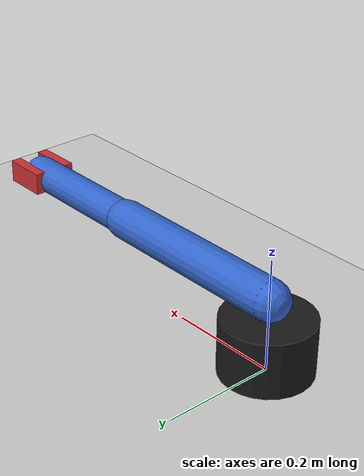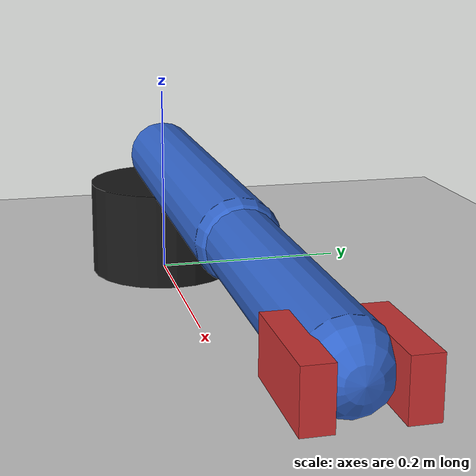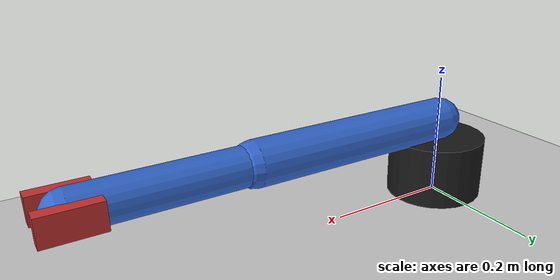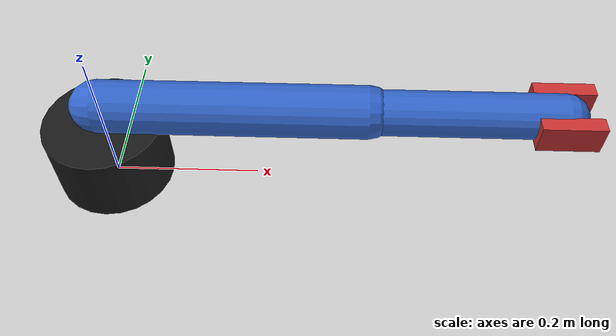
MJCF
<mujoco model="toy_arm">
  <compiler angle="radian" autolimits="true"/>
  <option timestep="0.005" gravity="0 0 -9.81"/>
  <visual>
    <global offwidth="320" offheight="240"/>
  </visual>

  <!-- Exclude self-collisions between adjacent bodies so contact forces
       do not interfere with actuator tracking. -->
  <contact>
    <exclude body1="base"  body2="link1"/>
    <exclude body1="link1" body2="link2"/>
    <exclude body1="link2" body2="gripper_body"/>
  </contact>

  <asset>
    <texture type="skybox" builtin="gradient" rgb1="0.3 0.5 0.7" rgb2="0 0 0" width="512" height="512"/>
    <material name="mat_floor" rgba="0.8 0.8 0.8 1"/>
    <material name="mat_link" rgba="0.2 0.4 0.8 1"/>
  </asset>

  <worldbody>
    <light pos="0 0 4" dir="0 0 -1"/>
    <geom name="floor" type="plane" size="2 2 0.05" material="mat_floor"/>
    <!-- Isometric-ish top camera: close and angled to fill the frame with the arm -->
    <camera name="top" pos="0.15 -0.6 0.6" xyaxes="1 0 0 0 0.5 0.866"/>
    <!-- Side camera close to arm for large coverage -->
    <camera name="side" pos="0.7 -0.7 0.5" xyaxes="0.707 0.707 0 -0.3 0.3 0.9"/>
    <body name="base" pos="0 0 0.05">
      <geom type="cylinder" size="0.08 0.05" rgba="0.1 0.1 0.1 1"/>
      <body name="link1" pos="0 0 0.08">
        <joint name="joint1" type="hinge" axis="0 0 1" range="-2.5 2.5" damping="2.0"/>
        <geom type="capsule" fromto="0 0 0 0.35 0 0" size="0.035" material="mat_link"/>
        <body name="link2" pos="0.35 0 0">
          <joint name="joint2" type="hinge" axis="0 -1 0" range="-0.3 1.3" damping="2.0"/>
          <geom type="capsule" fromto="0 0 0 0.25 0 0" size="0.03" material="mat_link"/>
          <body name="gripper_body" pos="0.25 0 0">
            <joint name="gripper" type="slide" axis="0 1 0" range="0 0.04" damping="0.5"/>
            <geom type="box" size="0.04 0.01 0.02" pos="0 0.03 0" rgba="0.8 0.2 0.2 1"/>
            <geom type="box" size="0.04 0.01 0.02" pos="0 -0.03 0" rgba="0.8 0.2 0.2 1"/>
            <camera name="wrist" pos="-0.05 0 0.08" xyaxes="0 1 0 -0.5 0 0.866"/>
          </body>
        </body>
      </body>
    </body>
  </worldbody>

  <actuator>
    <position name="joint1_motor" joint="joint1" kp="200" ctrlrange="-2.5 2.5"/>
    <position name="joint2_motor" joint="joint2" kp="200" ctrlrange="-0.3 1.3"/>
    <position name="gripper_motor" joint="gripper" kp="200" ctrlrange="0 0.04"/>
  </actuator>
</mujoco>
